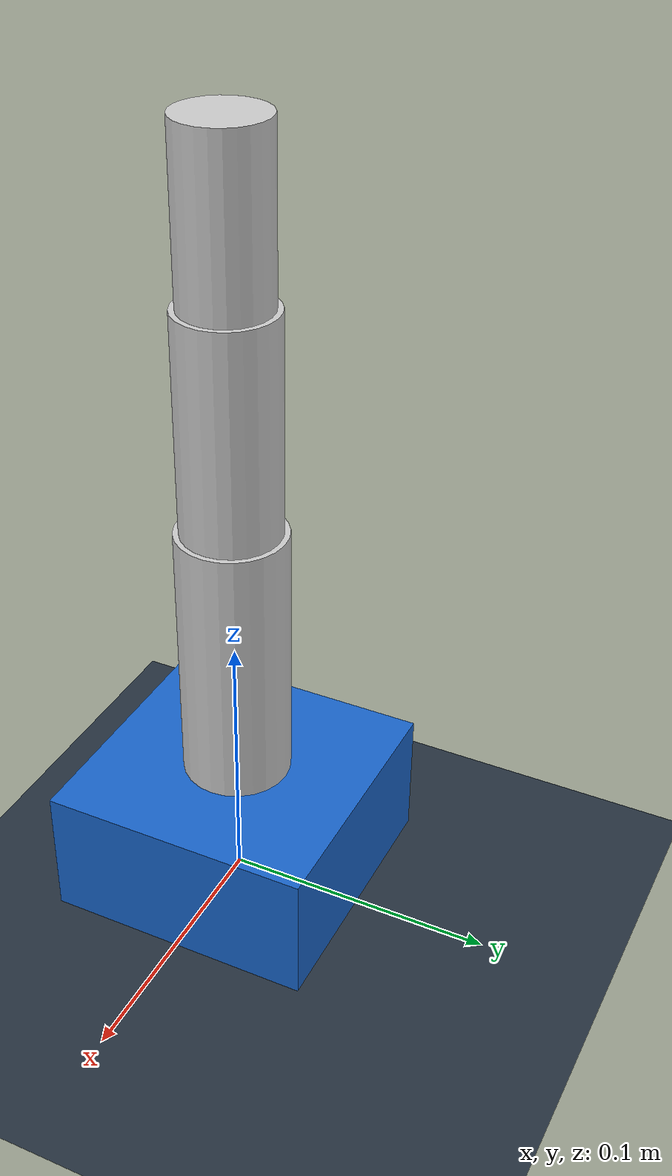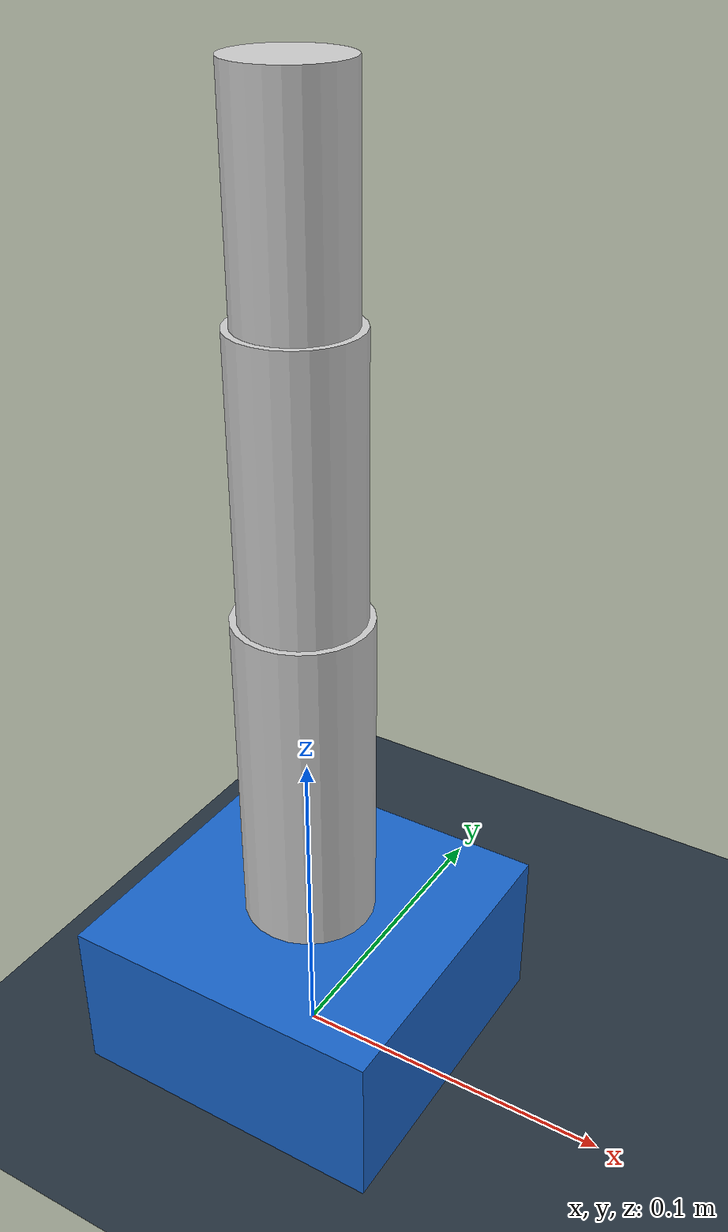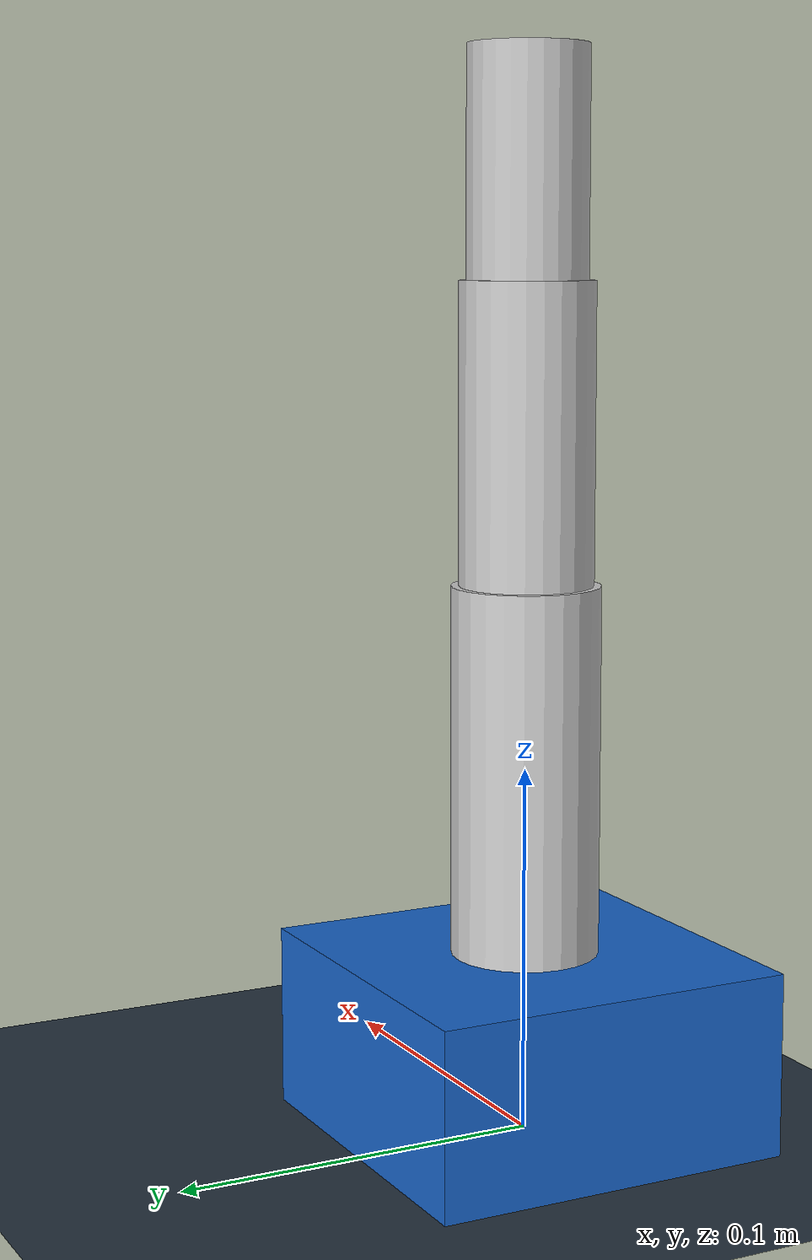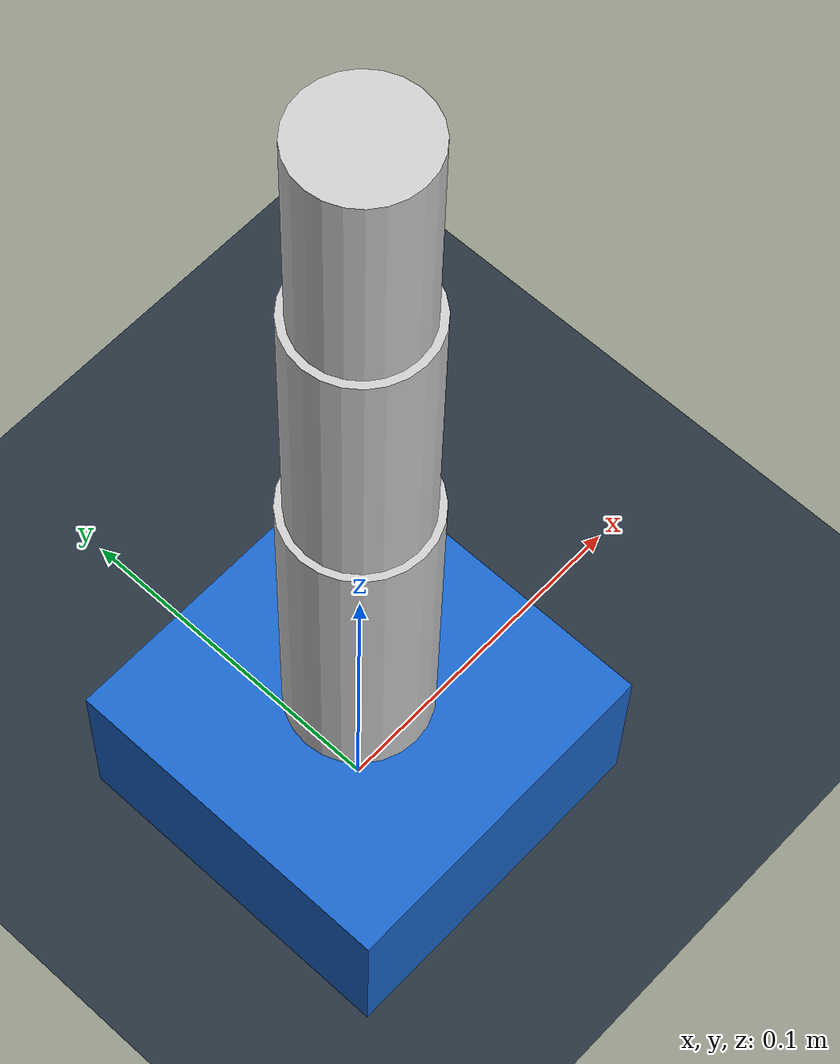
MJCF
<mujoco model="finger">
  <compiler angle="radian" coordinate="local"/>

  <option gravity="0 0 -9.81" timestep="0.002"/>

  <asset>
    <!-- Beautiful environment textures and materials -->
    <texture type="skybox" builtin="gradient" rgb1="0.3 0.5 0.7" rgb2="0.05 0.05 0.1" width="512" height="512"/>
    <texture name="grid" type="2d" builtin="checker" rgb1="0.1 0.15 0.2" rgb2="0.2 0.25 0.3" width="300" height="300" mark="edge" markrgb="0.3 0.3 0.3"/>
    <material name="grid" texture="grid" texrepeat="2 2" texuniform="true" reflectance="0.2"/>

    <!-- Finger link materials -->
    <material name="base_mat" rgba="0.1 0.4 0.8 1.0" shininess="0.6" specular="0.5"/>
    <material name="link_mat" rgba="0.8 0.8 0.8 1.0" shininess="0.8" specular="0.7"/>
  </asset>

  <worldbody>
    <!-- Ground plane -->
    <geom name="floor" type="plane" size="0 0 1" pos="0 0 0" material="grid"/>

    <!-- Lighting -->
    <light name="top_light" mode="targetbody" target="base_link" pos="0 0 2" dir="0 0 -1" diffuse="0.8 0.8 0.8" specular="0.3 0.3 0.3"/>
    <light name="side_light" mode="targetbody" target="base_link" pos="1.5 1.5 1.5" dir="-1 -1 -1" diffuse="0.4 0.4 0.4" specular="0.1 0.1 0.1"/>

    <!-- Base Link -->
    <body name="base_link" pos="0 0 0.025">
      <geom name="base_geom" type="box" size="0.05 0.05 0.025" material="base_mat"/>

      <!-- Joint 1 (Node 1, Axis 1) - 뿌리 관절 -->
      <body name="link1" pos="0 0 0.025">
        <joint name="joint1" type="hinge" axis="0 1 0" range="-3.0 0.5" limited="true"/>
        <geom name="link1_geom" type="cylinder" size="0.02 0.05" pos="0 0 0.05" material="link_mat"/>

        <!-- Joint 3 (Node 2, Axis 1) - 중간 관절 -->
        <body name="link2" pos="0 0 0.1">
          <joint name="joint3" type="hinge" axis="0 1 0" range="-1.57 1.57" limited="true"/>
          <geom name="link2_geom" type="cylinder" size="0.018 0.04" pos="0 0 0.04" material="link_mat"/>

          <!-- Joint 5 (Node 3, Axis 1) - 끝마디 관절 -->
          <body name="link3" pos="0 0 0.08">
            <joint name="joint5" type="hinge" axis="0 1 0" range="-1.57 1.57" limited="true"/>
            <geom name="link3_geom" type="cylinder" size="0.016 0.03" pos="0 0 0.03" material="link_mat"/>
          </body>
        </body>
      </body>
    </body>
  </worldbody>

  <actuator>
    <!-- Position control actuators for interactive movement -->
    <position name="actuator1" joint="joint1" ctrlrange="-3.0 0.5" kp="5.0"/>
    <position name="actuator3" joint="joint3" ctrlrange="-1.57 1.57" kp="5.0"/>
    <position name="actuator5" joint="joint5" ctrlrange="-1.57 1.57" kp="5.0"/>
  </actuator>
</mujoco>
